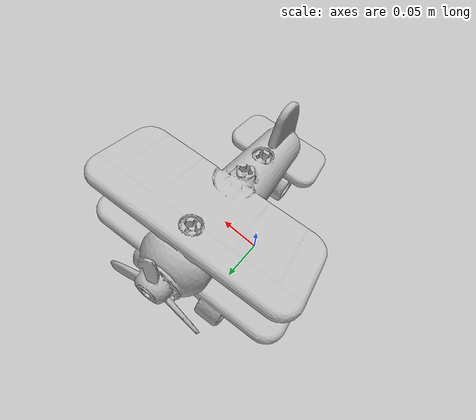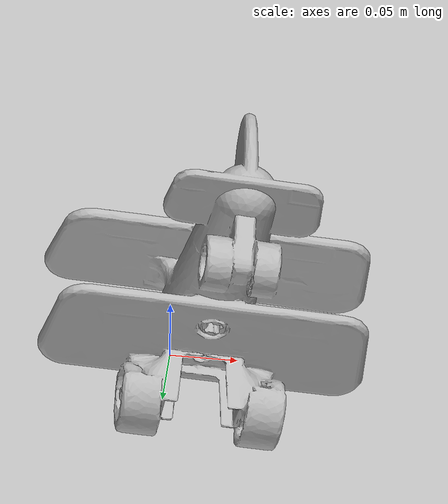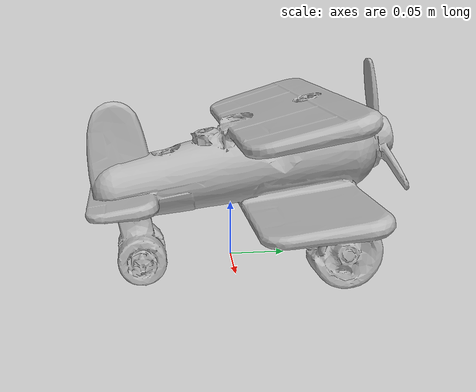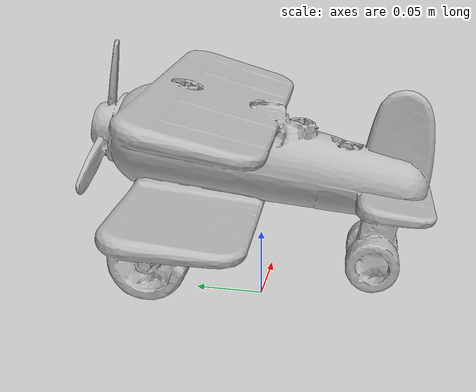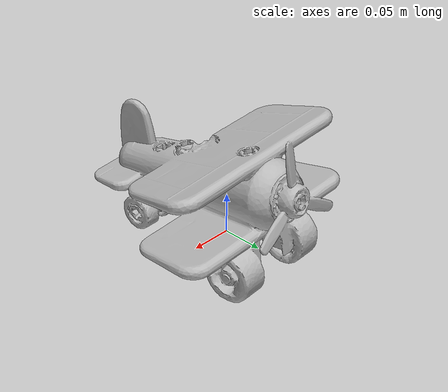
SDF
<?xml version='1.0'?>
<sdf version="1.4">
  <model name="a_toy_airplane">
    <static>false</static>
    <link name="link">
      <inertial>
        <pose>0.03572475763431454 0.030807398220545207 0.09092314374993267 0.07561010569448441 -1.4145003027848952 -1.5857219891797893</pose>
        <mass>0.0015645812091364013</mass>
        <inertia>
          <ixx>9.439950209532567e-06</ixx>
          <ixy>-3.401380287914143e-23</ixy>
          <ixz>3.7533114900590695e-22</ixz>
          <iyy>7.940826855115164e-06</iyy>
          <iyz>-3.6322755646024006e-23</iyz>
          <izz>5.371234151048585e-06</izz>
        </inertia>
      </inertial>
      <collision name="collision">
        <geometry>
          <mesh>
            <!-- Use a downsampled mesh for collisions -->
            <uri>model://072-a_toy_airplane/google_16k/072-a_toy_airplane.obj</uri>
            </mesh>
        </geometry>
        <surface>
          <friction>
            <ode>
              <mu>0.9</mu>
              <mu2>0.9</mu2>
            </ode>
          </friction>
          <contact>
            <ode>
              <kp>1000000000000.0</kp>
              <kd>1</kd>
              <min_depth>0.0001</min_depth>
              <max_vel>0.01</max_vel>
            </ode>
          </contact>
          <bounce>
            <restitution_coefficient>0.1</restitution_coefficient>
            <threshold>1000.0</threshold>
          </bounce>
        </surface>
      </collision>
      <visual name="visual">
        <geometry>
          <mesh>
            <uri>model://072-a_toy_airplane/google_16k/072-a_toy_airplane.dae</uri>
            </mesh>
        </geometry>
      </visual>
    </link>
  </model>
</sdf>
